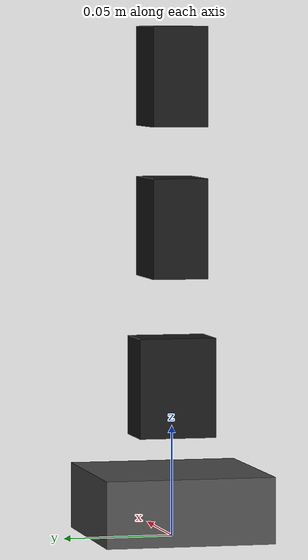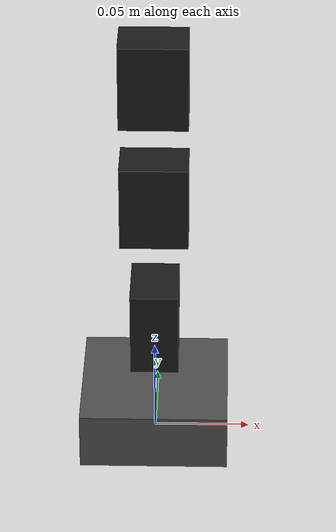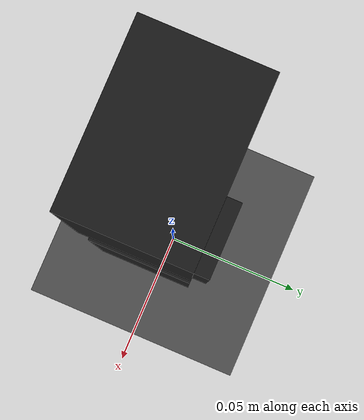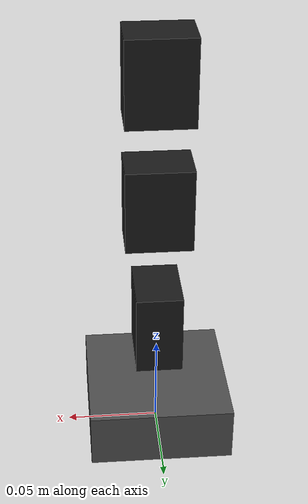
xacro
<?xml version="1.0"?>
<robot name="lx_arm" xmlns:xacro="http://www.ros.org/wiki/xacro">

  <!-- Constants for robot dimensions -->
  <xacro:property name="PI" value="3.1415926535897931"/>
  <xacro:property name="mass" value="1" /> <!-- arbitrary value for mass -->
  <xacro:property name="base_width" value="0.077" /> <!-- Square dimensions (widthxwidth) of base -->
  <xacro:property name="base_height" value="0.03" /> <!-- Base height -->
  <xacro:property name="conn_to_axle" value="0.0335" /> <!-- Length from attach point to axle -->
  <xacro:property name="servo_height" value="0.045" /> <!-- Height of servo -->
  <xacro:property name="servo_to_axle" value="0.0385" /> <!-- Length from base of servo to axle -->
  <xacro:property name="servotop_to_axle" value="${servo_height - servo_to_axle}" />
  <xacro:property name="smallcon" value="0.0065" /> <!-- Extra spacing due to small connector -->
  <xacro:property name="servo_depth" value="0.0352" /> <!-- Depth of servo motor -->
  <xacro:property name="servo_width" value="0.025" /> <!-- Width of servo motor -->

  <xacro:property name="servo_inertial">
    <inertial>
      <origin xyz="0 0 ${base_height/2}" rpy="0 0 0"/>
      <mass value="${mass}"/>
      <inertia
        ixx="${mass / 12.0 * (base_width*base_width + base_height*base_height)}" ixy="0.0" ixz="0.0"
        iyy="${mass / 12.0 * (base_height*base_height + base_width*base_width)}" iyz="0.0"
        izz="${mass / 12.0 * (base_width*base_width + base_width*base_width)}"/>
    </inertial>
  </xacro:property>

  <!-- Import all Gazebo-customization elements, including Gazebo colors -->
  <xacro:include filename="$(find lx_arm)/src/lx_arm.gazebo" />
  <!-- Import Rviz colors -->
  <xacro:include filename="$(find lx_arm)/src/materials.xacro" />

  <!-- Used for fixing robot to Gazebo 'base_link' -->
  <link name="world"/>

  <joint name="fixed" type="fixed">
    <parent link="world"/>
    <child link="base_link"/>
  </joint>

  <!-- Base Link -->
  <link name="base_link">
    <collision>
      <origin xyz="0 0 ${base_height/2}" rpy="0 0 0"/>
      <geometry>
        <box size="${base_width} ${base_width} ${base_height}"/>
      </geometry>
    </collision>
    <visual>
      <origin xyz="0 0 ${base_height/2}" rpy="0 0 0"/>
      <geometry>
        <box size="${base_width} ${base_width} ${base_height}"/>
      </geometry>
      <material name="grey"/>
    </visual>
    <xacro:insert_block name="servo_inertial"/>
  </link>

  <joint name="joint1" type="revolute">
    <limit effort="1000.0" lower="-${PI*0.6}" upper="${PI*0.6}" velocity="0.5"/>
    <origin rpy="0 0 0" xyz="0 0 ${base_height + conn_to_axle - servotop_to_axle}"/>
    <parent link="base_link"/>
    <child link="link1"/>
    <axis xyz="0 1 0"/>
    <dynamics damping="0.7"/>
  </joint>

  <link name="link1">
    <visual>
      <origin xyz="0 0 ${-servo_height/2 + conn_to_axle}" rpy="0 0 0"/>
      <geometry>
        <box size="${servo_width} ${servo_depth} ${servo_height}"/>
      </geometry>
      <material name="dgrey"/>
    </visual>
  </link>

  <joint name="joint2" type="revolute">
    <limit effort="1000.0" lower="-${PI*0.6}" upper="${PI*0.6}" velocity="0.5"/>
    <origin rpy="0 0 0" xyz="0 0 ${servo_to_axle + conn_to_axle}"/>
    <parent link="link1"/>
    <child link="link2"/>
    <axis xyz="1 0 0"/>
    <dynamics damping="0.7"/>
  </joint>

  <link name="link2">
    <visual>
      <origin xyz="0 0 ${-servo_height/2 + conn_to_axle}" rpy="0 0 ${PI/2}"/>
      <geometry>
        <box size="${servo_width} ${servo_depth} ${servo_height}"/>
      </geometry>
      <material name="dgrey"/>
    </visual>
  </link>

  <joint name="joint3" type="fixed">
    <origin rpy="0 0 0" xyz="0 0 ${servo_to_axle + 2*smallcon + servo_to_axle}"/>
    <parent link="link2"/>
    <child link="link3"/>
  </joint>

  <link name="link3">
    <visual>
      <origin xyz="0 0 ${servo_height/2 - conn_to_axle}" rpy="0 0 ${PI/2}"/>
      <geometry>
        <box size="${servo_width} ${servo_depth} ${servo_height}"/>
      </geometry>
      <material name="dgrey"/>
    </visual>
  </link>

  <transmission name="tran1">
    <type>transmission_interface/SimpleTransmission</type>
    <joint name="joint1">
      <hardwareInterface>hardware_interface/EffortJointInterface</hardwareInterface>
    </joint>
    <actuator name="motor1">
      <hardwareInterface>hardware_interface/EffortJointInterface</hardwareInterface>
      <mechanicalReduction>1</mechanicalReduction>
    </actuator>
  </transmission>
</robot>

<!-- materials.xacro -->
<robot>

  <material name="black">
    <color rgba="0.0 0.0 0.0 1.0"/>
  </material>

  <material name="blue">
    <color rgba="0.0 0.0 0.8 1.0"/>
  </material>

  <material name="green">
    <color rgba="0.0 0.8 0.0 1.0"/>
  </material>

  <material name="grey">
    <color rgba="0.3 0.3 0.3 1.0"/>
  </material>

  <material name="dgrey">
    <color rgba="0.1 0.1 0.1 1.0"/>
  </material>

  <material name="orange">
    <color rgba="${255/255} ${108/255} ${10/255} 1.0"/>
  </material>

  <material name="brown">
    <color rgba="${222/255} ${207/255} ${195/255} 1.0"/>
  </material>

  <material name="red">
    <color rgba="0.8 0.0 0.0 1.0"/>
  </material>

  <material name="white">
    <color rgba="1.0 1.0 1.0 0.5"/>
  </material>

</robot>
